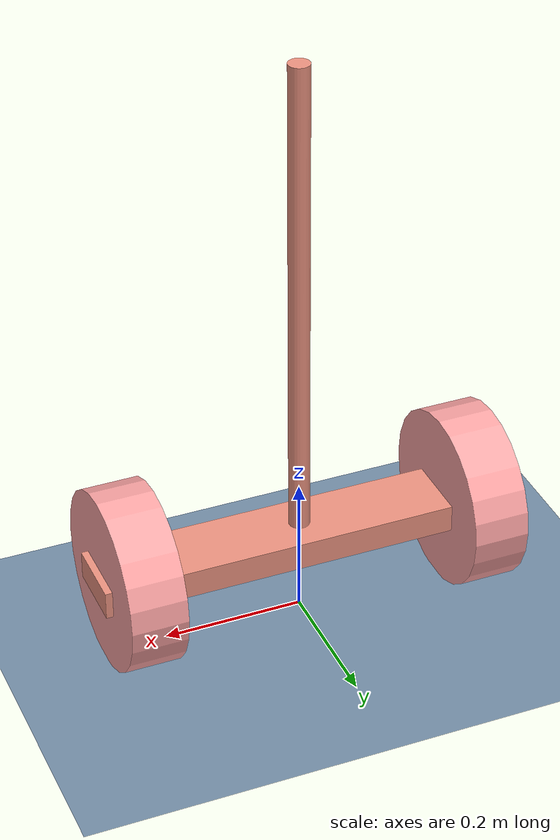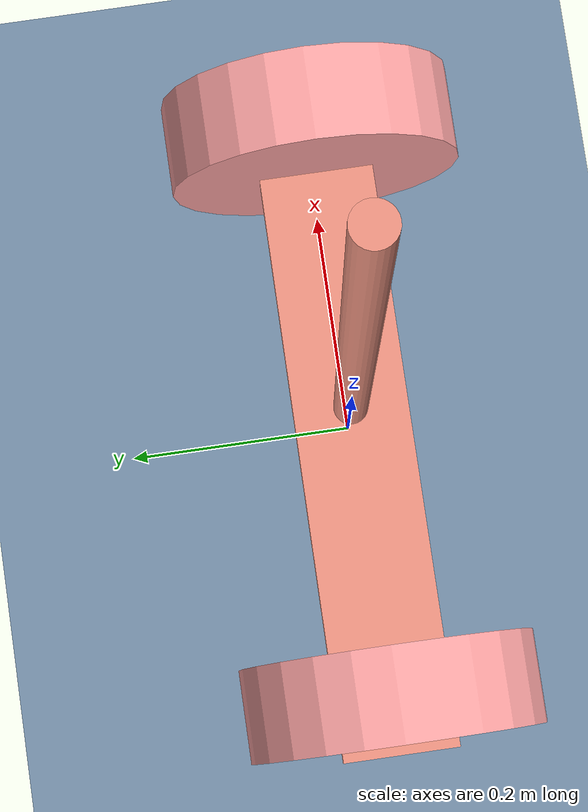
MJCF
<mujoco model="segway scene">
  <include file="segway.xml"/>
  <statistic center="0.3 0 0.4" extent="0.8"/>
  <visual>
    <headlight diffuse="0.6 0.6 0.6" ambient="0.1 0.1 0.1" specular="0 0 0"/>
    <rgba haze="0.15 0.25 0.35 1"/>
    <global azimuth="120" elevation="-20" fovy="90"/>
  </visual>
  <asset>
    <texture type="skybox" builtin="gradient" rgb1="0.3 0.5 0.7" rgb2="0 0 0" width="512" height="3072"/>
    <texture type="2d" name="groundplane" builtin="checker" mark="edge" rgb1="0.5 0.6 0.7" rgb2="0.4 0.5 0.6"
             markrgb="1 1 1" width="300" height="300"/>
    <material name="groundplane" texture="groundplane" texuniform="true" texrepeat="0.5 0.5" reflectance="0.2"/>
  </asset>
  <worldbody>
    <light pos="0 0 1.5" dir="0 0 -1" directional="true"/>
    <geom name="ground" size="0 0 0.05" type="plane" friction="2 2 2"
          pos="0 0 0" material="groundplane" contype="1" conaffinity="2"/>
  </worldbody>
</mujoco>

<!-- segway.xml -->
<mujoco model="balance">
    <compiler angle="radian"/>
    <size njmax="500" nconmax="100"/>
    <asset>
        <texture type="2d" name="wheel_texture" builtin="checker" mark="edge"
                 rgb1="1 1 1" rgb2="1 0.3 0.3"
                 markrgb="0.3 0.3 0.3" width="1024" height="1024"/>
        <material name="wheel_material" texture="wheel_texture" texuniform="true" texrepeat="20 20"/>
        <texture type="2d" name="body_texture" builtin="gradient" rgb1="0.9 0.3 0.5"
                 rgb2="0.95 0.85 0.5" width="512" height="512"/>
        <material name="body_material" texture="body_texture" texrepeat="4 2" shininess="0.3"/>
    </asset>
    <option gravity="0 0 -9.81" viscosity="0.002"/>
    <worldbody>
        <body name="segway" pos="0 0 0.09">
            <joint name="segway_free" type="free" damping="0.5"/>

            <!-- 轮轴杆：加厚、加重，降低重心 -->
            <body name="wheel_axle" pos="0 0 0.03">
                <inertial pos="0.0 0.0 0.0" quat="0.707107 0 0 0.707107"
                          mass="10.489" diaginertia="0.87993 0.64149 0.31774"/>
                <geom type="box" size="0.3 0.05 0.02" material="body_material"/>
            </body>

            <!-- 倒立杆 -->
            <body name="pendulum" pos="0 0 0.05">
                <inertial pos="0.0 0.0 0.0" quat="0.707107 0 0 0.707107"
                          mass="4.48164" diaginertia="0.75267 0.672276 0.0894829"/>
                <geom type="cylinder" size="0.015 0.35" pos="0 0 0.35" material="body_material"/>
            </body>

            <!-- 左轮 -->
            <body name="l_wheel" pos="-0.25 0 0.034">
                <inertial pos="0 0 0" quat="0.5 0.5 -0.5 0.5"
                          mass="4.23004" diaginertia="0.01832 0.010662 0.0105854"/>
                <joint name="torso_l_wheel" type="hinge" pos="0 0 0" axis="-1 0 0" damping="0.05"/>
                <geom type="cylinder" size="0.1275 0.04" quat="0.707107 0 0.707107 0"
                      material="wheel_material" contype="2" conaffinity="1" friction="2 1 0.8"/>
                <geom type="cylinder" size="0.1275 0.04" quat="0.707107 0 0.707107 0"
                      material="wheel_material"/>
            </body>

            <!-- 右轮 -->
            <body name="r_wheel" pos="0.25 0 0.034">
                <inertial pos="0 0 0" quat="0.5 0.5 -0.5 0.5"
                          mass="4.23004" diaginertia="0.01832 0.010662 0.0105854"/>
                <joint name="torso_r_wheel" type="hinge" pos="0 0 0" axis="-1 0 0" damping="0.05"/>
                <geom type="cylinder" size="0.1275 0.04" quat="0.707107 0 0.707107 0"
                      material="wheel_material" contype="2" conaffinity="1" friction="2 1 0.8"/>
                <geom type="cylinder" size="0.1275 0.04" quat="0.707107 0 0.707107 0"
                      material="wheel_material"/>
            </body>
        </body>
    </worldbody>

    <actuator>
        <!-- 添加力矩限幅，避免过激响应 -->
        <motor name="motor_l_wheel" joint="torso_l_wheel" gear="1" ctrlrange="-15 15" ctrllimited="true"/>
        <motor name="motor_r_wheel" joint="torso_r_wheel" gear="1" ctrlrange="-15 15" ctrllimited="true"/>
    </actuator>
</mujoco>
